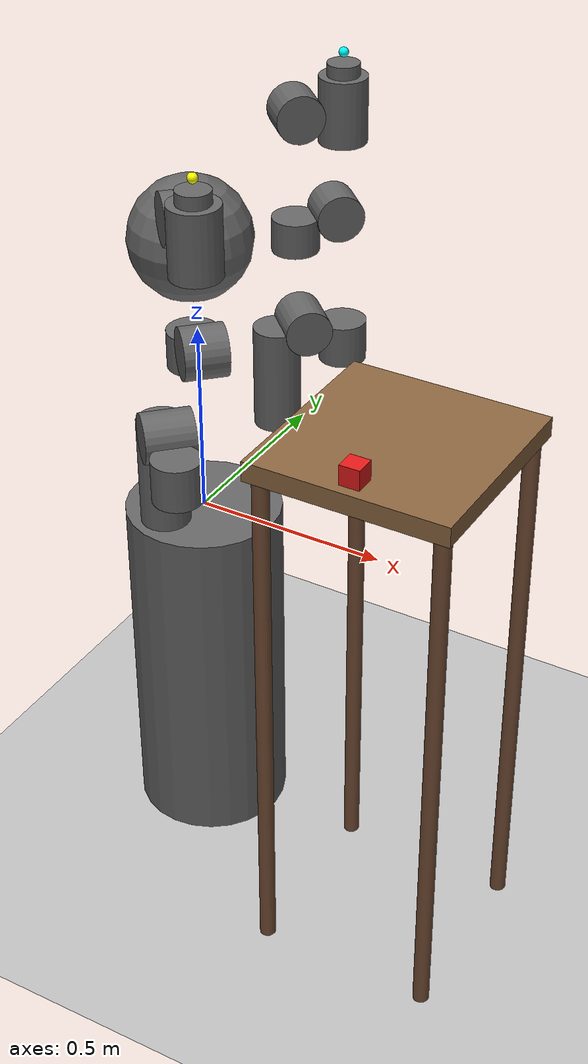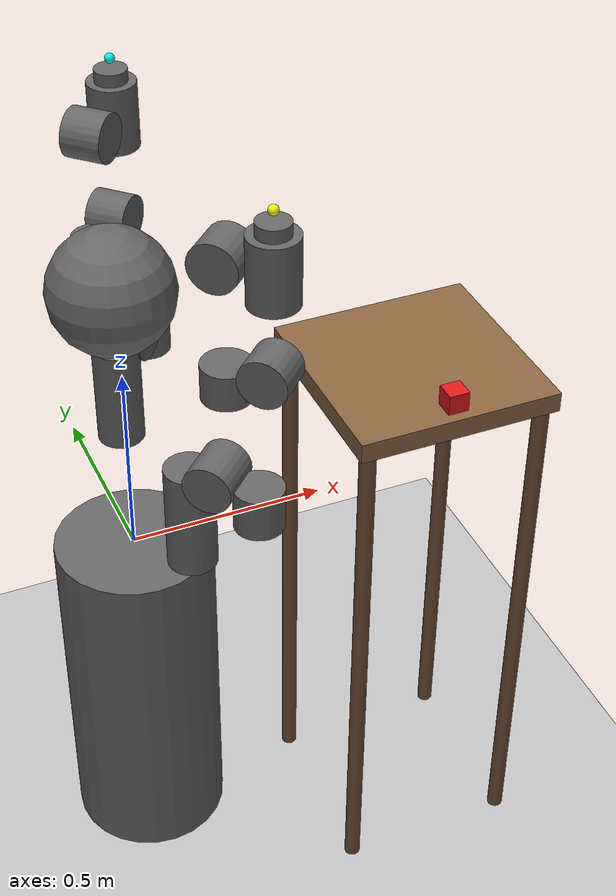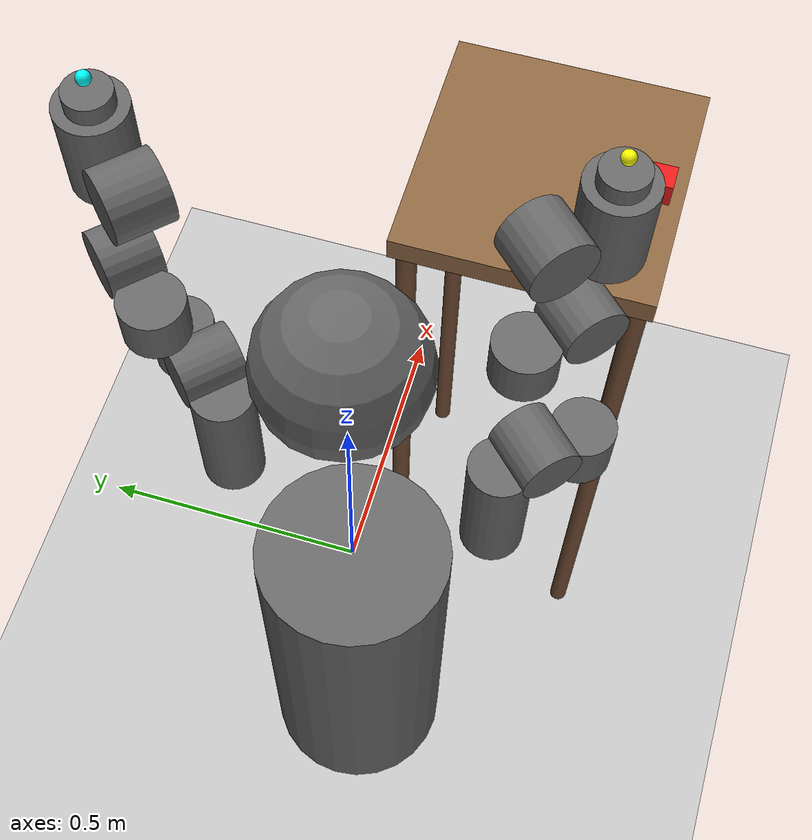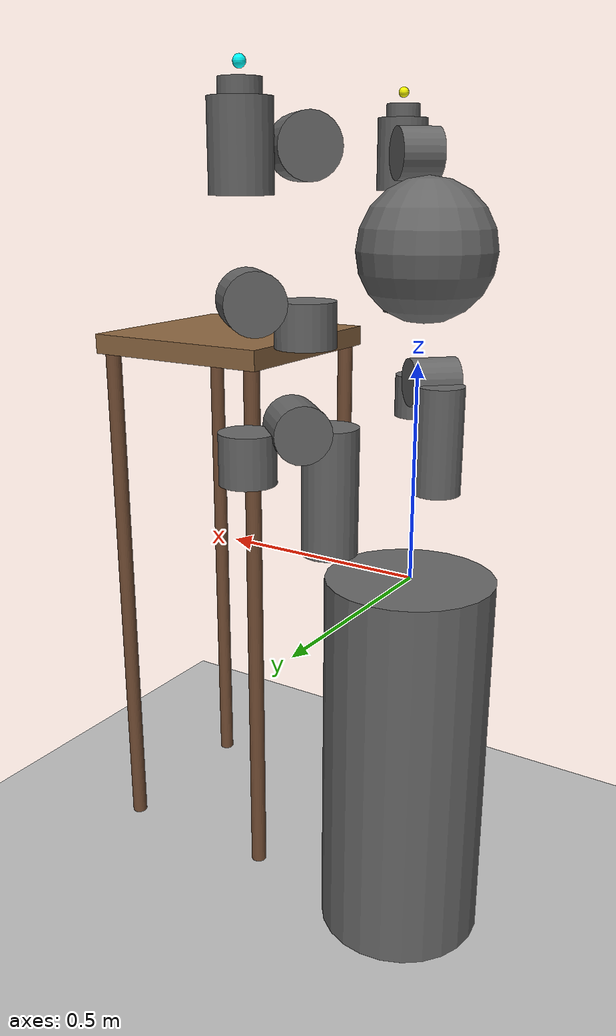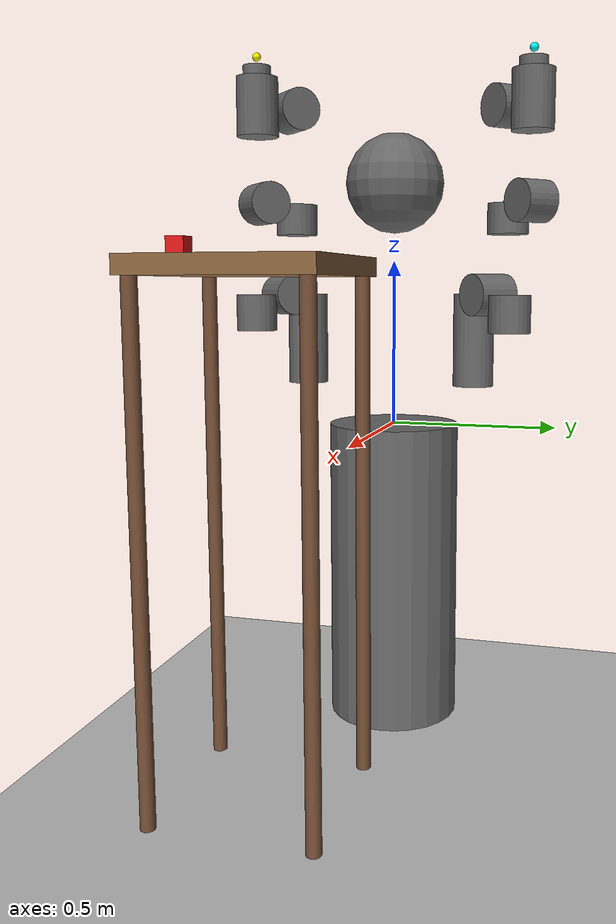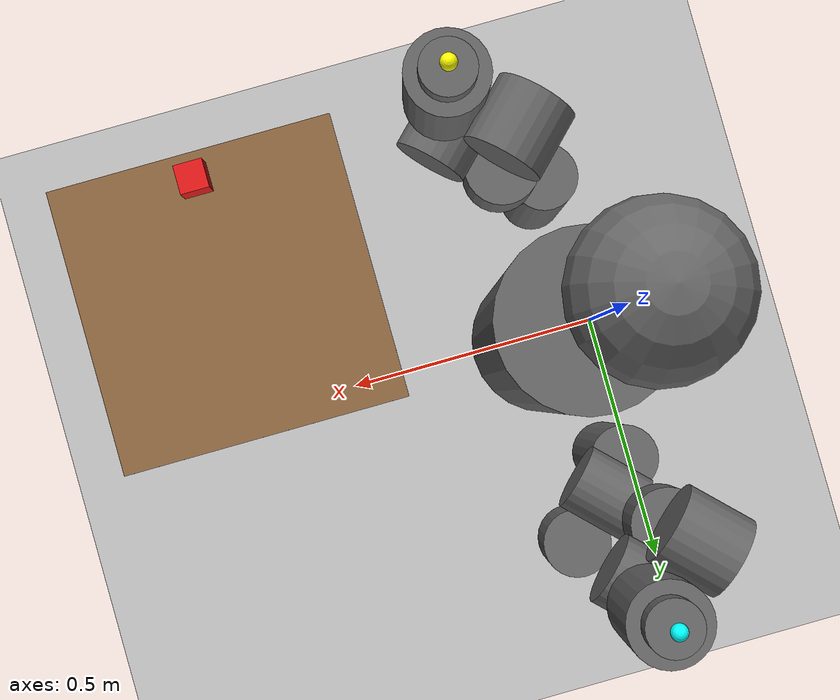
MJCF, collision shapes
<mujoco model="baxter">

  <!-- meshdir is relative to the location of this XML file (models/) -->
  <compiler meshdir="meshes" angle="radian" autolimits="true"/>

  <option timestep="0.002" gravity="0 0 -9.81" integrator="RK4"/>

  <visual>
    <headlight ambient="0.4 0.4 0.4" diffuse="0.8 0.8 0.8" specular="0.1 0.1 0.1"/>
  </visual>

  <default>
    <!-- Default joint: light armature for stability -->
    <joint damping="0.7" armature="0.01"/>
    <!-- Visual geoms: no collision -->
    <default class="visual">
      <geom contype="0" conaffinity="0"/>
    </default>
    <!-- Collision geoms: participate in contact -->
    <default class="collision">
      <geom contype="2" conaffinity="4" rgba="0.4 0.4 0.4 0"/>
    </default>
  </default>

  <!-- ================================================================
    ASSETS — STL meshes (one per URDF mesh, shared between arms)
  ================================================================ -->
  <asset>
    <mesh name="torso_mesh"    file="torso/base_link.STL"         scale="1 1 1"/>
    <mesh name="pedestal_mesh" file="base/PEDESTAL.STL"           scale="1 1 1"/>
    <mesh name="head_mesh"     file="head/H0.STL"                 scale="1 1 1"/>
    <mesh name="S0"            file="upper_shoulder/S0.STL"       scale="1 1 1"/>
    <mesh name="S1"            file="lower_shoulder/S1.STL"       scale="1 1 1"/>
    <mesh name="E0"            file="upper_elbow/E0.STL"          scale="1 1 1"/>
    <mesh name="E1"            file="lower_elbow/E1.STL"          scale="1 1 1"/>
    <mesh name="W0"            file="upper_forearm/W0.STL"        scale="1 1 1"/>
    <mesh name="W1"            file="lower_forearm/W1.STL"        scale="1 1 1"/>
    <mesh name="W2"            file="wrist/W2.STL"                scale="1 1 1"/>
  </asset>

  <!-- ================================================================
    WORLDBODY
  ================================================================ -->
  <worldbody>

    <body name="scene_camera_body" pos="1.0 -1.2 1.2">
      <camera name="scene_camera" xyaxes="0.832 0.555 0  -0.400 0.600 0.693" fovy="55"/>
    </body>

    <!-- Lighting -->
    <light pos="0 0 4"   dir="0 0 -1"    diffuse="0.8 0.8 0.8" specular="0.3 0.3 0.3" castshadow="true"/>
    <light pos="2 2 3"   dir="-1 -1 -1"  diffuse="0.5 0.5 0.5" castshadow="false"/>

    <!-- Floor: Baxter's pedestal bottom sits at ~z=-0.924 m when the robot
         origin is at z=0, so the floor is placed just below that. -->
    <geom name="floor" type="plane" size="5 5 0.1" rgba="0.75 0.75 0.75 1"
          pos="0 0 -0.93" contype="1" conaffinity="4" friction="0.8 0.1 0.1"/>

    <body name="table" pos="0.65 -0.20 0.475">
      <geom name="table_top"  type="box" size="0.25 0.25 0.025"
            rgba="0.55 0.40 0.25 1" contype="1" conaffinity="4"
            friction="0.8 0.1 0.1"/>
      <geom name="table_leg1" type="cylinder" size="0.02 0.69"
            pos=" 0.22  0.22 -0.715" rgba="0.45 0.30 0.20 1"
            contype="0" conaffinity="0"/>
      <geom name="table_leg2" type="cylinder" size="0.02 0.69"
            pos="-0.22  0.22 -0.715" rgba="0.45 0.30 0.20 1"
            contype="0" conaffinity="0"/>
      <geom name="table_leg3" type="cylinder" size="0.02 0.69"
            pos=" 0.22 -0.22 -0.715" rgba="0.45 0.30 0.20 1"
            contype="0" conaffinity="0"/>
      <geom name="table_leg4" type="cylinder" size="0.02 0.69"
            pos="-0.22 -0.22 -0.715" rgba="0.45 0.30 0.20 1"
            contype="0" conaffinity="0"/>
    </body>

    <!-- Table top at z=0.50, cube half-size=0.025 → resting centre z=0.525.
         Rests on table top: table z=0.475, top half=0.025, cube half=0.025 → z=0.525. -->
    <body name="target_cube" pos="0.65 -0.40 0.525">
      <!-- Free joint lets the cube be pushed by the arm -->
      <joint name="cube_free" type="free"/>
      <inertial pos="0 0 0" mass="0.050" diaginertia="2e-5 2e-5 2e-5"/>
      <!-- cube(4,5): collides with arm(contype=2 matches conaffinity=5 bit0? no.
           arm(2,4) vs cube(4,5): (2&5)|(4&4)=0|4=4 ✓  cube-table: (4&4)|(1&5)=4|1 ✓ -->
      <geom name="cube" type="box" size="0.025 0.025 0.025"
            rgba="0.9 0.1 0.1 1" contype="4" conaffinity="5"
            friction="0.6 0.1 0.1"/>
    </body>

    <!-- ── BASE / TORSO ─────────────────────────────────────────── -->
    <!-- Body is welded to world (no free joint defined) -->
    <body name="base" pos="0 0 0">
      <inertial pos="0 0 0" mass="0.001" diaginertia="1e-6 1e-6 1e-6"/>

      <body name="torso" pos="0 0 0">
        <!-- ixx iyy izz ixy ixz iyz  (from URDF ixx ixy ixz iyy iyz izz) -->
        <inertial pos="0 0 0" mass="35.336455"
                  fullinertia="1.849155 1.662671 0.802239 -0.000354 -0.154188 0.003292"/>
        <geom class="visual"    name="torso_v" type="mesh" mesh="torso_mesh" rgba="0.5 0.1 0.1 1"/>
        <geom class="collision" name="torso_c" type="box"  size="0.15 0.15 0.5" pos="0 0 0.35"
              contype="0" conaffinity="0"/>

        <!-- Pedestal: fixed sub-body of torso -->
        <body name="pedestal" pos="0 0 0">
          <inertial pos="0 0 0" mass="60.86397744"
                    fullinertia="5.0635929 6.08689388 4.96191932 0.00103417 0.80199628 0.00105311"/>
          <geom class="visual"    name="pedestal_v" type="mesh" mesh="pedestal_mesh" rgba="0.2 0.2 0.2 1"/>
          <!-- half-height=0.465 → bottom at z=-0.93, flush with floor -->
          <geom class="collision" name="pedestal_c" type="cylinder" size="0.20 0.465" pos="0 0 -0.465"/>
        </body>

        <!-- ── HEAD ─────────────────────────────────────────────── -->
        <!-- URDF joint head_pan: origin xyz="0.06 0 0.686" rpy="0 0 0" axis="0 0 1" -->
        <body name="head" pos="0.06 0 0.686">
          <inertial pos="0 0 0" mass="0.547767"
                    fullinertia="0.004641 0.003295 0.003415 0.000159 0.000242 -0.001324"/>
          <geom class="visual"    name="head_v" type="mesh" mesh="head_mesh" rgba="0.2 0.2 0.2 1"/>
          <geom class="collision" name="head_c" type="sphere" size="0.15" pos="-0.07 0 0.05"/>
          <joint name="head_pan" type="hinge" axis="0 0 1" range="-1.5708 1.5708"/>

          <!-- Head camera body: URDF joint head_camera origin xyz="0.12839 0 0.06368"
               rpy="1.75057 0 1.5708" (parent=head). Camera looks along its -Z in MuJoCo. -->
          <body name="head_camera_body" pos="0.12839 0 0.06368" euler="1.75057 0 1.5708">
            <inertial pos="0 0 0" mass="0.0001" diaginertia="1e-8 1e-8 1e-8"/>
            <camera name="head_camera" pos="0 0 0" fovy="60"/>
          </body>
        </body>

        <body name="right_arm_mount" pos="0.024645 -0.219645 0.118588" euler="0 0 -0.7854">
          <inertial pos="0 0 0" mass="0.0001" diaginertia="1e-8 1e-8 1e-8"/>

          <!-- right_s0: xyz="0.055695 0 0.011038" rpy="0 0 0" axis="0 0 1" -->
          <body name="right_upper_shoulder" pos="0.055695 0 0.011038">
            <inertial pos="0.01783 0.00086 0.19127" mass="5.70044"
                      fullinertia="0.04709102262 0.03766976455 0.03595988478
                                   0.00012787556  0.00614870039  0.00078086899"/>
            <geom class="visual"    name="rus_v" type="mesh"     mesh="S0"    rgba="0.5 0.1 0.1 1"/>
            <geom class="collision" name="rus_c" type="cylinder" size="0.06 0.1361" pos="0 0 0.1361"/>
            <joint name="right_s0" type="hinge" axis="0 0 1" range="-1.7017 1.7017"/>

            <!-- right_s1: xyz="0.069 0 0.27035" rpy="-1.5708 0 0" axis="0 0 1" -->
            <body name="right_lower_shoulder" pos="0.069 0 0.27035" euler="-1.5708 0 0">
              <inertial pos="0.06845 0.00269 -0.00529" mass="3.22698"
                        fullinertia="0.01175209419 0.0278859752 0.02078749298
                                     -0.00030096398 0.00207675762 -0.00018821993"/>
              <geom class="visual"    name="rls_v" type="mesh"     mesh="S1"  rgba="0.5 0.1 0.1 1"/>
              <geom class="collision" name="rls_c" type="cylinder" size="0.06 0.06"/>
              <joint name="right_s1" type="hinge" axis="0 0 1" range="-2.147 1.047"/>

              <!-- right_e0: xyz="0.102 0 0" rpy="1.5708 0 1.5708" axis="0 0 1" -->
              <body name="right_upper_elbow" pos="0.102 0 0" euler="1.5708 0 1.5708">
                <inertial pos="-0.00276 0.00132 0.18086" mass="4.31272"
                          fullinertia="0.02661733557 0.02844355207 0.01248008322
                                       0.00029270634  0.00392189887  0.0010838933"/>
                <geom class="visual"    name="rue_v" type="mesh"     mesh="E0"  rgba="0.5 0.1 0.1 1"/>
                <geom class="collision" name="rue_c" type="cylinder" size="0.06 0.0535" pos="0 0 -0.0535"/>
                <joint name="right_e0" type="hinge" axis="0 0 1" range="-3.0542 3.0542"/>

                <!-- right_e1: xyz="0.069 0 0.26242" rpy="-1.5708 -1.5708 0" axis="0 0 1" -->
                <body name="right_lower_elbow" pos="0.069 0 0.26242" euler="-1.5708 -1.5708 0">
                  <inertial pos="0.02611 0.00159 -0.01117" mass="2.07206"
                            fullinertia="0.00711582686 0.01318227876 0.00926852064
                                         0.00036036173  0.0007459496  -0.00019663418"/>
                  <geom class="visual"    name="rle_v" type="mesh"     mesh="E1"  rgba="0.5 0.1 0.1 1"/>
                  <geom class="collision" name="rle_c" type="cylinder" size="0.06 0.05"/>
                  <joint name="right_e1" type="hinge" axis="0 0 1" range="-0.05 2.618"/>

                  <!-- right_w0: xyz="0.10359 0 0" rpy="1.5708 0 1.5708" axis="0 0 1" -->
                  <body name="right_upper_forearm" pos="0.10359 0 0" euler="1.5708 0 1.5708">
                    <inertial pos="-0.00168 0.0046 0.13952" mass="2.24665"
                              fullinertia="0.01667742825 0.01675457264 0.0037463115
                                           0.00018403705  0.00018657629 -0.00064732352"/>
                    <geom class="visual"    name="ruf_v" type="mesh"     mesh="W0"  rgba="0.5 0.1 0.1 1"/>
                    <geom class="collision" name="ruf_c" type="cylinder" size="0.06 0.044" pos="0 0 -0.044"/>
                    <joint name="right_w0" type="hinge" axis="0 0 1" range="-3.059 3.059"/>

                    <!-- right_w1: xyz="0.01 0 0.2707" rpy="-1.5708 -1.5708 0" axis="0 0 1" -->
                    <body name="right_lower_forearm" pos="0.01 0 0.2707" euler="-1.5708 -1.5708 0">
                      <inertial pos="0.06041 0.00697 0.006" mass="1.60979"
                                fullinertia="0.00387607152 0.00700537914 0.0055275524
                                             -0.00044384784 -0.00021115038  0.00015348067"/>
                      <geom class="visual"    name="rlf_v" type="mesh"     mesh="W1"  rgba="0.5 0.1 0.1 1"/>
                      <geom class="collision" name="rlf_c" type="cylinder" size="0.06 0.05"/>
                      <joint name="right_w1" type="hinge" axis="0 0 1" range="-1.5708 2.094"/>

                      <!-- right_w2: xyz="0.115975 0 0" rpy="1.5708 0 1.5708" axis="0 0 1" -->
                      <body name="right_wrist" pos="0.115975 0 0" euler="1.5708 0 1.5708">
                        <inertial pos="0.00198 0.00125 0.01855" mass="0.35093"
                                  fullinertia="0.00025289155 0.0002688601 0.0003074118
                                               0.00000575311 -0.00000159345 -0.00000519818"/>
                        <geom class="visual"    name="rwr_v" type="mesh"     mesh="W2"  rgba="0.1 0.1 0.1 1"/>
                        <geom class="collision" name="rwr_c" type="cylinder" size="0.06 0.0825"/>
                        <joint name="right_w2" type="hinge" axis="0 0 1" range="-3.059 3.059"/>

                        <!-- right_hand: xyz="0 0 0.11355" fixed -->
                        <body name="right_hand" pos="0 0 0.11355">
                          <inertial pos="0.01093 0.00042 -0.01532" mass="0.19125"
                                    fullinertia="0.00017588 0.00021166377 0.00023745397
                                                 0.00000147073  0.0000243633  0.00000172689"/>
                          <geom class="collision" name="rhand_c" type="cylinder"
                                size="0.04 0.0232" pos="0 0 -0.0232"/>

                          <body name="right_hand_camera_body"
                                pos="0.06 0 0.04" euler="0 1.5708 0">
                            <inertial pos="0 0 0" mass="0.0001" diaginertia="1e-8 1e-8 1e-8"/>
                            <camera name="right_hand_camera" fovy="90"/>
                          </body>

                          <!-- Endpoint site for IK / Jacobian (invisible, at fingertip) -->
                          <site name="right_endpoint" pos="0 0 0.025" size="0.005" rgba="0 0 0 0"/>
                          <!-- Right endpoint marker (yellow sphere) -->
                          <body name="right_gripper" pos="0 0 0.025">
                            <inertial pos="0 0 0" mass="0.0001" diaginertia="1e-8 1e-8 1e-8"/>
                            <geom class="visual" name="right_endpoint_vis"
                                  type="sphere" size="0.012" rgba="1 1 0 1"/>
                          </body>
                        </body><!-- /right_hand -->
                      </body><!-- /right_wrist -->
                    </body><!-- /right_lower_forearm -->
                  </body><!-- /right_upper_forearm -->
                </body><!-- /right_lower_elbow -->
              </body><!-- /right_upper_elbow -->
            </body><!-- /right_lower_shoulder -->
          </body><!-- /right_upper_shoulder -->
        </body><!-- /right_arm_mount -->

        <body name="left_arm_mount" pos="0.024645 0.219645 0.118588" euler="0 0 0.7854">
          <inertial pos="0 0 0" mass="0.0001" diaginertia="1e-8 1e-8 1e-8"/>

          <!-- left_s0: identical structure to right_s0 -->
          <body name="left_upper_shoulder" pos="0.055695 0 0.011038">
            <inertial pos="0.01783 0.00086 0.19127" mass="5.70044"
                      fullinertia="0.04709102262 0.03766976455 0.03595988478
                                   0.00012787556  0.00614870039  0.00078086899"/>
            <geom class="visual"    name="lus_v" type="mesh"     mesh="S0"    rgba="0.5 0.1 0.1 1"/>
            <geom class="collision" name="lus_c" type="cylinder" size="0.06 0.1361" pos="0 0 0.1361"/>
            <joint name="left_s0" type="hinge" axis="0 0 1" range="-1.7017 1.7017"/>

            <body name="left_lower_shoulder" pos="0.069 0 0.27035" euler="-1.5708 0 0">
              <inertial pos="0.06845 0.00269 -0.00529" mass="3.22698"
                        fullinertia="0.01175209419 0.0278859752 0.02078749298
                                     -0.00030096398 0.00207675762 -0.00018821993"/>
              <geom class="visual"    name="lls_v" type="mesh"     mesh="S1"  rgba="0.5 0.1 0.1 1"/>
              <geom class="collision" name="lls_c" type="cylinder" size="0.06 0.06"/>
              <joint name="left_s1" type="hinge" axis="0 0 1" range="-2.147 1.047"/>

              <body name="left_upper_elbow" pos="0.102 0 0" euler="1.5708 0 1.5708">
                <inertial pos="-0.00276 0.00132 0.18086" mass="4.31272"
                          fullinertia="0.02661733557 0.02844355207 0.01248008322
                                       0.00029270634  0.00392189887  0.0010838933"/>
                <geom class="visual"    name="lue_v" type="mesh"     mesh="E0"  rgba="0.5 0.1 0.1 1"/>
                <geom class="collision" name="lue_c" type="cylinder" size="0.06 0.0535" pos="0 0 -0.0535"/>
                <joint name="left_e0" type="hinge" axis="0 0 1" range="-3.0542 3.0542"/>

                <body name="left_lower_elbow" pos="0.069 0 0.26242" euler="-1.5708 -1.5708 0">
                  <inertial pos="0.02611 0.00159 -0.01117" mass="2.07206"
                            fullinertia="0.00711582686 0.01318227876 0.00926852064
                                         0.00036036173  0.0007459496  -0.00019663418"/>
                  <geom class="visual"    name="lle_v" type="mesh"     mesh="E1"  rgba="0.5 0.1 0.1 1"/>
                  <geom class="collision" name="lle_c" type="cylinder" size="0.06 0.05"/>
                  <joint name="left_e1" type="hinge" axis="0 0 1" range="-0.05 2.618"/>

                  <body name="left_upper_forearm" pos="0.10359 0 0" euler="1.5708 0 1.5708">
                    <inertial pos="-0.00168 0.0046 0.13952" mass="2.24665"
                              fullinertia="0.01667742825 0.01675457264 0.0037463115
                                           0.00018403705  0.00018657629 -0.00064732352"/>
                    <geom class="visual"    name="luf_v" type="mesh"     mesh="W0"  rgba="0.5 0.1 0.1 1"/>
                    <geom class="collision" name="luf_c" type="cylinder" size="0.06 0.044" pos="0 0 -0.044"/>
                    <joint name="left_w0" type="hinge" axis="0 0 1" range="-3.059 3.059"/>

                    <body name="left_lower_forearm" pos="0.01 0 0.2707" euler="-1.5708 -1.5708 0">
                      <inertial pos="0.06041 0.00697 0.006" mass="1.60979"
                                fullinertia="0.00387607152 0.00700537914 0.0055275524
                                             -0.00044384784 -0.00021115038  0.00015348067"/>
                      <geom class="visual"    name="llf_v" type="mesh"     mesh="W1"  rgba="0.5 0.1 0.1 1"/>
                      <geom class="collision" name="llf_c" type="cylinder" size="0.06 0.05"/>
                      <joint name="left_w1" type="hinge" axis="0 0 1" range="-1.5708 2.094"/>

                      <body name="left_wrist" pos="0.115975 0 0" euler="1.5708 0 1.5708">
                        <inertial pos="0.00198 0.00125 0.01855" mass="0.35093"
                                  fullinertia="0.00025289155 0.0002688601 0.0003074118
                                               0.00000575311 -0.00000159345 -0.00000519818"/>
                        <geom class="visual"    name="lwr_v" type="mesh"     mesh="W2"  rgba="0.1 0.1 0.1 1"/>
                        <geom class="collision" name="lwr_c" type="cylinder" size="0.06 0.0825"/>
                        <joint name="left_w2" type="hinge" axis="0 0 1" range="-3.059 3.059"/>

                        <body name="left_hand" pos="0 0 0.11355">
                          <inertial pos="0.01093 0.00042 -0.01532" mass="0.19125"
                                    fullinertia="0.00017588 0.00021166377 0.00023745397
                                                 0.00000147073  0.0000243633  0.00000172689"/>
                          <geom class="collision" name="lhand_c" type="cylinder"
                                size="0.04 0.0232" pos="0 0 -0.0232"/>

                          <!-- Left hand camera: xyz="0.03825 0.012 0.015355" rpy="0 0 -1.5708" -->
                          <body name="left_hand_camera_body"
                                pos="0.03825 0.012 0.015355" euler="0 0 -1.5708">
                            <inertial pos="0 0 0" mass="0.0001" diaginertia="1e-8 1e-8 1e-8"/>
                            <camera name="left_hand_camera" fovy="90"/>
                          </body>

                          <!-- Left endpoint marker (cyan sphere) -->
                          <body name="left_gripper" pos="0 0 0.025">
                            <inertial pos="0 0 0" mass="0.0001" diaginertia="1e-8 1e-8 1e-8"/>
                            <geom class="visual" name="left_endpoint"
                                  type="sphere" size="0.012" rgba="0 1 1 1"/>
                          </body>
                        </body><!-- /left_hand -->
                      </body><!-- /left_wrist -->
                    </body><!-- /left_lower_forearm -->
                  </body><!-- /left_upper_forearm -->
                </body><!-- /left_lower_elbow -->
              </body><!-- /left_upper_elbow -->
            </body><!-- /left_lower_shoulder -->
          </body><!-- /left_upper_shoulder -->
        </body><!-- /left_arm_mount -->

      </body><!-- /torso -->
    </body><!-- /base -->
  </worldbody>

  <actuator>
    <!-- Head -->
    <velocity name="head_pan_v"  joint="head_pan"  kv="5"  ctrlrange="-1.0 1.0"/>

    <!-- Right arm — shoulder/elbow: kv=30, ctrlrange=±3.0 (90 Nm max > 31 Nm gravity); wrist: kv=10 -->
    <velocity name="right_s0_v"  joint="right_s0"  kv="30" ctrlrange="-3.0 3.0"/>
    <velocity name="right_s1_v"  joint="right_s1"  kv="30" ctrlrange="-3.0 3.0"/>
    <velocity name="right_e0_v"  joint="right_e0"  kv="30" ctrlrange="-3.0 3.0"/>
    <velocity name="right_e1_v"  joint="right_e1"  kv="30" ctrlrange="-3.0 3.0"/>
    <velocity name="right_w0_v"  joint="right_w0"  kv="10" ctrlrange="-4.0 4.0"/>
    <velocity name="right_w1_v"  joint="right_w1"  kv="10" ctrlrange="-4.0 4.0"/>
    <velocity name="right_w2_v"  joint="right_w2"  kv="10" ctrlrange="-4.0 4.0"/>

    <!-- Left arm -->
    <velocity name="left_s0_v"   joint="left_s0"   kv="30" ctrlrange="-3.0 3.0"/>
    <velocity name="left_s1_v"   joint="left_s1"   kv="30" ctrlrange="-3.0 3.0"/>
    <velocity name="left_e0_v"   joint="left_e0"   kv="30" ctrlrange="-3.0 3.0"/>
    <velocity name="left_e1_v"   joint="left_e1"   kv="30" ctrlrange="-3.0 3.0"/>
    <velocity name="left_w0_v"   joint="left_w0"   kv="10" ctrlrange="-4.0 4.0"/>
    <velocity name="left_w1_v"   joint="left_w1"   kv="10" ctrlrange="-4.0 4.0"/>
    <velocity name="left_w2_v"   joint="left_w2"   kv="10" ctrlrange="-4.0 4.0"/>
  </actuator>

  <keyframe>
    <!-- qpos order: cube_free(7) head(1) right_arm(7) left_arm(7) = 22 total -->
    <key name="home"
         qpos="0.65 -0.20 0.525 1 0 0 0   0   0 -0.9599 0 2.0 0 0.7854 0   0 -0.9599 0 2.0 0 0.7854 0"/>
  </keyframe>

</mujoco>
